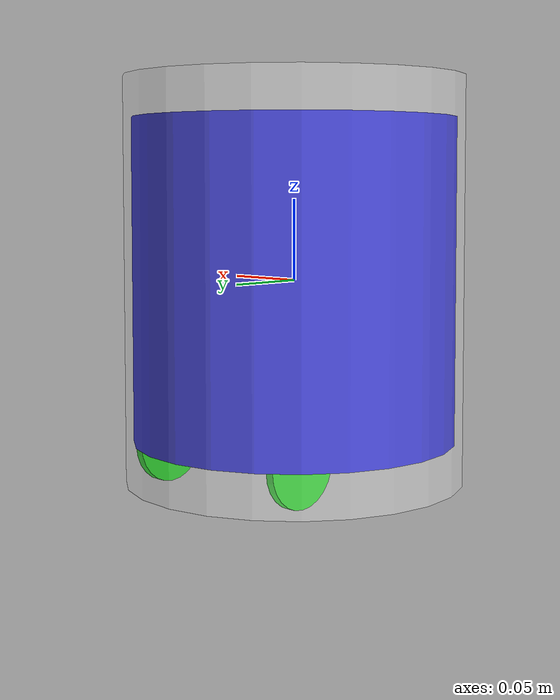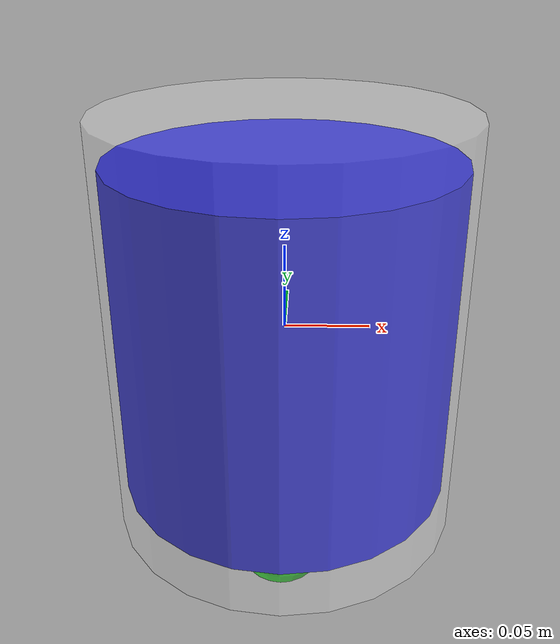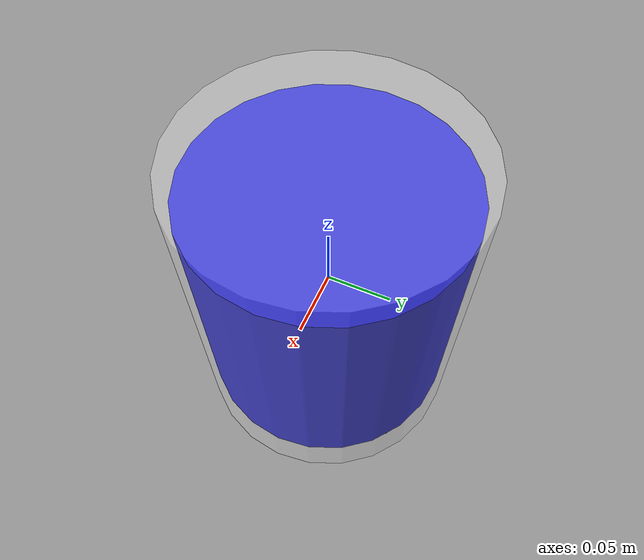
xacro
<?xml version="1.0"?>
<robot xmlns:xacro="http://www.ros.org/wiki/xacro" name="origins">

  <material name="blue">
    <color rgba="0 0 0.8 1"/>
  </material>

  <material name="green">
    <color rgba="0 0.8 0 1"/>
  </material>

  <material name="white">
    <color rgba="1 1 1 0.3"/>
  </material>

  <link name="base_link">
    <visual>
      <geometry>
        <cylinder length="0.2" radius="0.1"/>
      </geometry>
      <origin rpy="0 0 0" xyz="0 0 0"/>
      <material name="blue"/>
    </visual>
    <collision>
      <geometry>
        <cylinder length="0.2" radius="0.1"/>
      </geometry>
    </collision>
    <inertial>
      <mass value="1"/>
      <inertia ixx="5.83e-3" ixy="0.0" ixz="0.0" iyy="5.83e-3" iyz="0.0" izz="5e-3"/>
    </inertial>
  </link>

  <link name="gran">
    <visual>
      <geometry>
        <cylinder length="0.25" radius="0.105"/>
      </geometry>
      <origin rpy="0 0 0" xyz="0 0 0"/>
      <material name="white"/>
    </visual>
  </link>

  <joint name="base_to_gran" type="fixed">
    <parent link="base_link"/>
    <child link="gran"/>
    <origin rpy="0 0 0" xyz="0 0 0"/>
  </joint>

  <xacro:property name="wheel_radius" value="0.025" />
  <xacro:property name="wheel_thick" value="0.005" />
  <xacro:property name="wheel_x" value="0.055" />
  <xacro:property name="wheel_y" value="0.055" />
  <xacro:property name="wheel_z" value="-0.1" />
  <xacro:property name="disk_mass" value="0.001" />

  <xacro:macro name="inertial_disk" params="mass radius">
    <inertial>
      <mass value="${mass}" />
        <inertia ixx="${1/2 * mass * radius * radius}" ixy="0.0" ixz="0.0"
                 iyy="${1/4 * mass * radius * radius}" iyz="0.0"
                 izz="${1/4 * mass * radius * radius}" />
    </inertial>
  </xacro:macro>

  <xacro:macro name="wheel" params="pref reflect">
    <link name="wheel_${pref}">
      <visual>
        <geometry>
          <cylinder length="${wheel_thick}" radius="${wheel_radius}"/>
        </geometry>
        <origin rpy="0 ${pi/2} 0" xyz="0 0 0"/>
        <material name="green"/>
      </visual>
      <collision>
        <geometry>
          <cylinder length="${wheel_thick}" radius="${wheel_radius}"/>
        </geometry>
      </collision>
      <xacro:inertial_disk mass="${disk_mass}" radius="${wheel_radius}"/>
    </link>

    <joint name="base_to_wheel_${pref}" type="continuous">
      <axis xyz="-1 0 0"/>
      <origin rpy="0 0 0" xyz="${reflect * wheel_x} ${wheel_y} ${wheel_z}"/>
      <parent link="base_link"/>
      <child link="wheel_${pref}"/>
    </joint>
  </xacro:macro>

  <xacro:wheel pref="left" reflect="-1" />

  <xacro:wheel pref="right" reflect="1" />

  <link name="spher_wheel">
    <visual>
      <geometry>
        <sphere radius="0.025"/>
      </geometry>
      <origin rpy="0 0 0" xyz="0 0 0"/>
      <material name="green"/>
    </visual>
    <collision>
      <geometry>
        <cylinder radius="0.025"/>
      </geometry>
    </collision>
    <inertial>
      <mass value="0.02"/>
      <inertia ixx="5e-6" ixy="0.0" ixz="0.0" iyy="5e-6" iyz="0.0" izz="5e-6"/>
    </inertial>
  </link>

  <joint name="base_to_spher_wheel" type="fixed">
    <parent link="base_link"/>
    <child link="spher_wheel"/>
    <origin rpy="0 0 0" xyz="0 -0.07 -0.1"/>
  </joint>

</robot>
